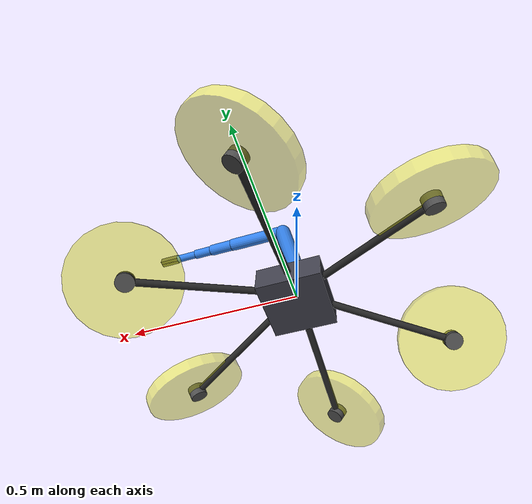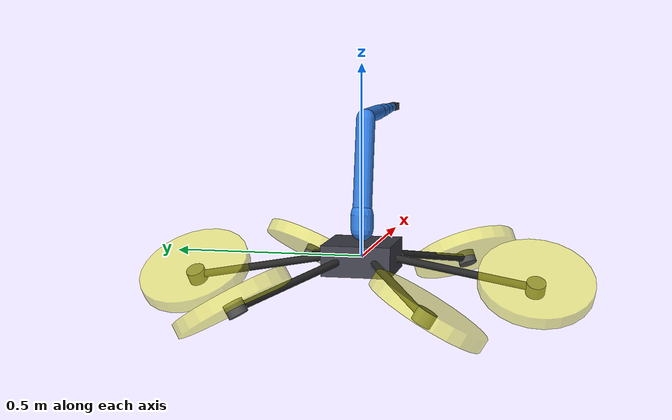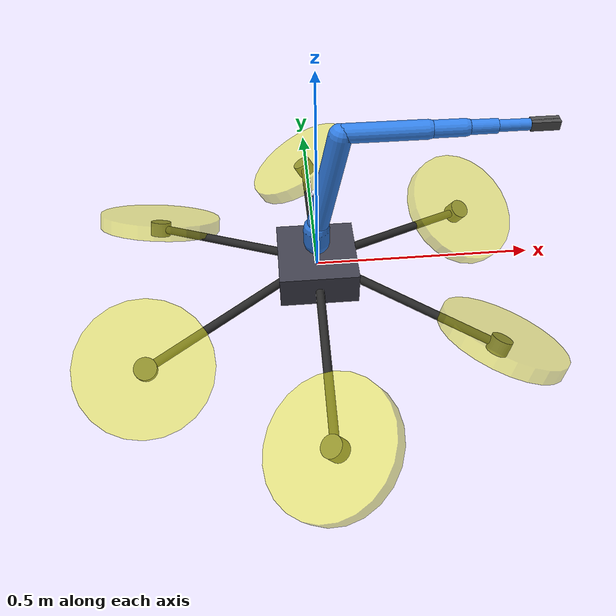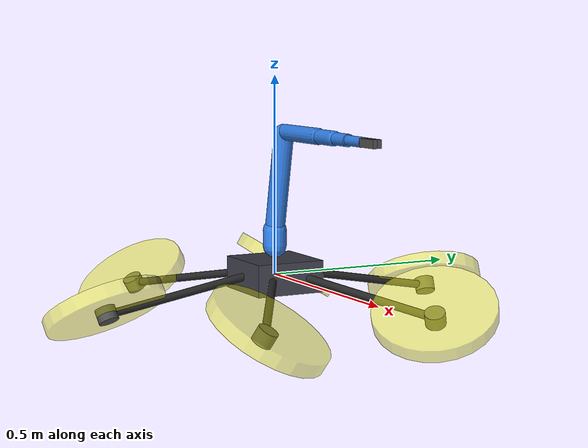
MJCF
<?xml version='1.0' encoding='utf-8'?>
<mujoco model="simple_aerial_manipulator">
    <compiler angle="radian" coordinate="local" />
    <option gravity="0 0 -9.81" timestep="0.002" />
    <default>
        <geom contype="1" conaffinity="1" margin="0.002" friction="1 0.1 0.1" />
        <joint damping="2" armature="0.01" />
        </default>
    <worldbody>
        <body name="drone_base" pos="0 0 0">
            <joint name="root_free" type="free" damping="0" armature="0" />
            <geom name="drone_chassis" type="box" size="0.090000 0.090000 0.040000" mass="4.800000" rgba="0.250000 0.250000 0.300000 1.000000" friction="1 0.1 0.1" />
            <geom name="arm_1" type="cylinder" fromto="0.070148 -0.040500 0.000000 0.389711 -0.225000 -0.065065" size="0.010000" mass="0.080000" rgba="0.150000 0.150000 0.150000 1.000000" />
            <geom name="arm_2" type="cylinder" fromto="0.070148 0.040500 0.000000 0.389711 0.225000 -0.065065" size="0.010000" mass="0.080000" rgba="0.150000 0.150000 0.150000 1.000000" />
            <geom name="arm_3" type="cylinder" fromto="0.000000 0.081000 0.000000 0.000000 0.450000 -0.065065" size="0.010000" mass="0.080000" rgba="0.150000 0.150000 0.150000 1.000000" />
            <geom name="arm_4" type="cylinder" fromto="-0.070148 0.040500 0.000000 -0.389711 0.225000 -0.065065" size="0.010000" mass="0.080000" rgba="0.150000 0.150000 0.150000 1.000000" />
            <geom name="arm_5" type="cylinder" fromto="-0.070148 -0.040500 0.000000 -0.389711 -0.225000 -0.065065" size="0.010000" mass="0.080000" rgba="0.150000 0.150000 0.150000 1.000000" />
            <geom name="arm_6" type="cylinder" fromto="-0.000000 -0.081000 0.000000 -0.000000 -0.450000 -0.065065" size="0.010000" mass="0.080000" rgba="0.150000 0.150000 0.150000 1.000000" />
            <body name="rotor_1_motor" pos="0.389711 -0.225000 -0.065065" quat="0.962515 -0.185878 0.197522 0.000000">
                <geom name="rotor_1_motor_geom" type="cylinder" size="0.025000 0.017500" mass="0.120000" rgba="0.3 0.3 0.3 1.0" />
                <body name="rotor_1" pos="0 0 0.017500">
                    <joint name="joint_prop_1" type="hinge" axis="0 0 1" damping="0.0001" armature="0.0001" />
                    <geom name="rotor_1_disk" type="cylinder" size="0.150000 0.017500" mass="0.040000" rgba="0.9 0.9 0.1 0.5" />
                    </body>
                </body>
            <body name="rotor_2_motor" pos="0.389711 0.225000 -0.065065" quat="0.962515 0.185878 0.197522 -0.000000">
                <geom name="rotor_2_motor_geom" type="cylinder" size="0.025000 0.017500" mass="0.120000" rgba="0.3 0.3 0.3 1.0" />
                <body name="rotor_2" pos="0 0 0.017500">
                    <joint name="joint_prop_2" type="hinge" axis="0 0 1" damping="0.0001" armature="0.0001" />
                    <geom name="rotor_2_disk" type="cylinder" size="0.150000 0.017500" mass="0.040000" rgba="0.9 0.9 0.1 0.5" />
                    </body>
                </body>
            <body name="rotor_3_motor" pos="0.000000 0.450000 -0.065065" quat="0.962515 -0.078120 -0.259736 0.000000">
                <geom name="rotor_3_motor_geom" type="cylinder" size="0.025000 0.017500" mass="0.120000" rgba="0.3 0.3 0.3 1.0" />
                <body name="rotor_3" pos="0 0 0.017500">
                    <joint name="joint_prop_3" type="hinge" axis="0 0 1" damping="0.0001" armature="0.0001" />
                    <geom name="rotor_3_disk" type="cylinder" size="0.150000 0.017500" mass="0.040000" rgba="0.9 0.9 0.1 0.5" />
                    </body>
                </body>
            <body name="rotor_4_motor" pos="-0.389711 0.225000 -0.065065" quat="0.962515 -0.263998 0.062214 0.000000">
                <geom name="rotor_4_motor_geom" type="cylinder" size="0.025000 0.017500" mass="0.120000" rgba="0.3 0.3 0.3 1.0" />
                <body name="rotor_4" pos="0 0 0.017500">
                    <joint name="joint_prop_4" type="hinge" axis="0 0 1" damping="0.0001" armature="0.0001" />
                    <geom name="rotor_4_disk" type="cylinder" size="0.150000 0.017500" mass="0.040000" rgba="0.9 0.9 0.1 0.5" />
                    </body>
                </body>
            <body name="rotor_5_motor" pos="-0.389711 -0.225000 -0.065065" quat="0.962515 0.263998 0.062214 -0.000000">
                <geom name="rotor_5_motor_geom" type="cylinder" size="0.025000 0.017500" mass="0.120000" rgba="0.3 0.3 0.3 1.0" />
                <body name="rotor_5" pos="0 0 0.017500">
                    <joint name="joint_prop_5" type="hinge" axis="0 0 1" damping="0.0001" armature="0.0001" />
                    <geom name="rotor_5_disk" type="cylinder" size="0.150000 0.017500" mass="0.040000" rgba="0.9 0.9 0.1 0.5" />
                    </body>
                </body>
            <body name="rotor_6_motor" pos="-0.000000 -0.450000 -0.065065" quat="0.962515 0.078120 -0.259736 0.000000">
                <geom name="rotor_6_motor_geom" type="cylinder" size="0.025000 0.017500" mass="0.120000" rgba="0.3 0.3 0.3 1.0" />
                <body name="rotor_6" pos="0 0 0.017500">
                    <joint name="joint_prop_6" type="hinge" axis="0 0 1" damping="0.0001" armature="0.0001" />
                    <geom name="rotor_6_disk" type="cylinder" size="0.150000 0.017500" mass="0.040000" rgba="0.9 0.9 0.1 0.5" />
                    </body>
                </body>
            <body name="arm_mount" pos="0.000000 0.000000 0.000000" quat="1.000000 0.000000 0.000000 0.000000">
                <body name="shoulder_link" pos="0.000000 0.000000 0.072000">
                    <joint name="shoulder_link_joint" type="hinge" axis="0.000000 0.000000 1.000000" range="-3.141580 3.141580" />
                    <geom name="shoulder_link_capsule" type="capsule" size="0.030000 0.019325" pos="0.000000 0.000000 0.019325" quat="1.000000 0.000000 0.000000 0.000000" mass="0.480879" rgba="0.2 0.5 0.9 1.0" friction="0.8 0.1 0.1" />
                    <body name="upper_arm_link" pos="0.000000 0.000000 0.038650">
                        <joint name="upper_arm_link_joint" type="hinge" axis="0.000000 1.000000 0.000000" range="-1.884960 1.989680" />
                        <geom name="upper_arm_link_capsule" type="capsule" size="0.025000 0.125000" pos="0.024397 0.000000 0.122596" quat="0.995181 0.000000 0.098059 0.000000" mass="0.430811" rgba="0.2 0.5 0.9 1.0" friction="0.8 0.1 0.1" />
                        <body name="upper_forearm_link" pos="0.049750 0.000000 0.250000">
                            <joint name="upper_forearm_link_joint" type="hinge" axis="0.000000 1.000000 0.000000" range="-2.146750 1.605700" />
                            <geom name="upper_forearm_link_capsule" type="capsule" size="0.020000 0.087500" pos="0.087500 0.000000 0.000000" quat="0.707107 0.000000 0.707107 0.000000" mass="0.234589" rgba="0.2 0.5 0.9 1.0" friction="0.8 0.1 0.1" />
                            <body name="lower_forearm_link" pos="0.175000 0.000000 0.000000">
                                <joint name="lower_forearm_link_joint" type="hinge" axis="1.000000 0.000000 0.000000" range="-3.141580 3.141580" />
                                <geom name="lower_forearm_link_capsule" type="capsule" size="0.018000 0.037500" pos="0.037500 0.000000 0.000000" quat="0.707107 0.000000 0.707107 0.000000" mass="0.220991" rgba="0.2 0.5 0.9 1.0" friction="0.8 0.1 0.1" />
                                <body name="wrist_link" pos="0.075000 0.000000 0.000000">
                                    <joint name="wrist_link_joint" type="hinge" axis="0.000000 1.000000 0.000000" range="-1.745330 2.146750" />
                                    <geom name="wrist_link_capsule" type="cylinder" size="0.015000 0.032500" pos="0.032500 0.000000 0.000000" quat="0.707107 0.000000 0.707107 0.000000" mass="0.084957" rgba="0.2 0.5 0.9 1.0" friction="0.8 0.1 0.1" />
                                    <body name="gripper_link" pos="0.065000 0.000000 0.000000">
                                        <joint name="gripper_link_joint" type="hinge" axis="1.000000 0.000000 0.000000" range="-3.141580 3.141580" />
                                        <geom name="gripper_link_capsule" type="cylinder" size="0.012000 0.033000" pos="0.033000 0.000000 0.000000" quat="0.707107 0.000000 0.707107 0.000000" mass="0.110084" rgba="0.2 0.5 0.9 1.0" friction="0.8 0.1 0.1" />
                                        <body name="left_finger_link" pos="0.096000 0.000000 0.000000">
                                            <joint name="left_finger" type="slide" axis="0 1 0" range="0.0 0.05000" />
                                            <geom name="left_finger_geom" type="box" size="0.030000 0.006000 0.010000" pos="0 0.005 0" mass="0.016246" rgba="0.3 0.3 0.3 1.0" />
                                            </body>
                                        <body name="right_finger_link" pos="0.096000 0.000000 0.000000">
                                            <joint name="right_finger" type="slide" axis="0 1 0" range="-0.05000 0.000" />
                                            <geom name="right_finger_geom" type="box" size="0.030000 0.006000 0.010000" pos="0 -0.005 0" mass="0.016246" rgba="0.3 0.3 0.3 1.0" />
                                            </body>
                                        </body>
                                    </body>
                                </body>
                            </body>
                        </body>
                    </body>
                </body>
            </body>
        </worldbody>
    <actuator>
        <motor name="joint_prop_1_motor" joint="joint_prop_1" ctrllimited="true" ctrlrange="-50 50" gear="1" />
        <motor name="joint_prop_2_motor" joint="joint_prop_2" ctrllimited="true" ctrlrange="-50 50" gear="1" />
        <motor name="joint_prop_3_motor" joint="joint_prop_3" ctrllimited="true" ctrlrange="-50 50" gear="1" />
        <motor name="joint_prop_4_motor" joint="joint_prop_4" ctrllimited="true" ctrlrange="-50 50" gear="1" />
        <motor name="joint_prop_5_motor" joint="joint_prop_5" ctrllimited="true" ctrlrange="-50 50" gear="1" />
        <motor name="joint_prop_6_motor" joint="joint_prop_6" ctrllimited="true" ctrlrange="-50 50" gear="1" />
        <motor name="shoulder_link_joint_motor" joint="shoulder_link_joint" ctrllimited="true" ctrlrange="-50 50" gear="1" />
        <motor name="upper_arm_link_joint_motor" joint="upper_arm_link_joint" ctrllimited="true" ctrlrange="-50 50" gear="1" />
        <motor name="upper_forearm_link_joint_motor" joint="upper_forearm_link_joint" ctrllimited="true" ctrlrange="-50 50" gear="1" />
        <motor name="lower_forearm_link_joint_motor" joint="lower_forearm_link_joint" ctrllimited="true" ctrlrange="-50 50" gear="1" />
        <motor name="wrist_link_joint_motor" joint="wrist_link_joint" ctrllimited="true" ctrlrange="-50 50" gear="1" />
        <motor name="gripper_link_joint_motor" joint="gripper_link_joint" ctrllimited="true" ctrlrange="-50 50" gear="1" />
        <motor name="left_finger_motor" joint="left_finger" ctrllimited="true" ctrlrange="-50 50" gear="1" />
        <motor name="right_finger_motor" joint="right_finger" ctrllimited="true" ctrlrange="-50 50" gear="1" />
        </actuator>
    </mujoco>
